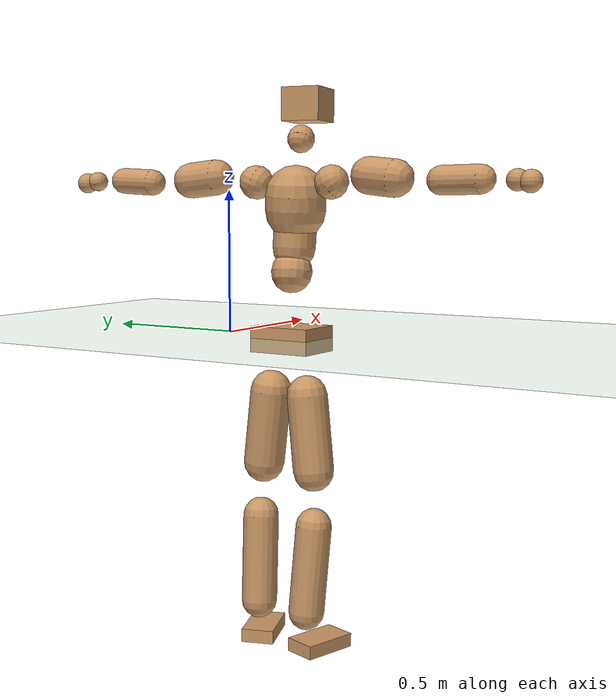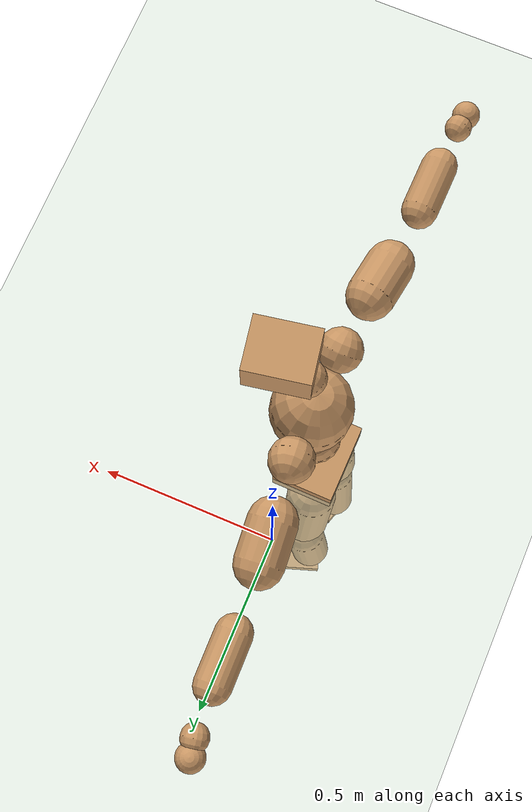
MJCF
<mujoco model="humanoid">
  <compiler coordinate="local" angle="radian"/>
  <default>
    <joint damping="0.0" armature="0.01" stiffness="0.0" limited="true"/>
    <geom conaffinity="1" condim="3" contype="7" margin="0.001" rgba="0.8 0.6 .4 1"/>
  </default>
  <asset>
    <texture type="skybox" builtin="gradient" rgb1=".4 .5 .6" rgb2="0 0 0" width="100" height="100"/>
    <texture builtin="flat" height="1278" mark="cross" markrgb="1 1 1" name="texgeom" random="0.01" rgb1="0.8 0.6 0.4" rgb2="0.8 0.6 0.4" type="cube" width="127"/>
    <texture builtin="checker" height="100" name="texplane" rgb1="0 0 0" rgb2="0.8 0.8 0.8" type="2d" width="100"/>
    <material name="MatPlane" reflectance="0.5" shininess="1" specular="1" texrepeat="60 60" texture="texplane"/>
    <material name="geom" texture="texgeom" texuniform="true"/>
  </asset>
  <worldbody>
    <light cutoff="100" diffuse="1 1 1" dir="-0 0 -1.3" directional="true" exponent="1" pos="0 0 1.3" specular=".1 .1 .1"/>
    <geom conaffinity="1" condim="3" name="floor" pos="0 0 0" rgba="0.8 0.9 0.8 1" size="100 100 .2" type="plane" material="MatPlane"/>
    <body name="Pelvis" pos="-0.0052 -0.2717 0.0043">
      <freejoint name="Pelvis"/>
      <geom type="box" contype="1" conaffinity="1" density="5359.374713" pos="-0.0157 0.0002 -0.0100" size="0.0877 0.1119 0.0444" quat="1.0000 0.0000 0.0000 -0.0062" name="Pelvis"/>
      <body name="L_Hip" pos="-0.0364 0.0599 -0.0935">
        <joint name="L_Hip_x" type="hinge" pos="0 0 0" axis="1 0 0" stiffness="1600" damping="160" armature="0.02" range="-180.0000 180.0000"/>
        <joint name="L_Hip_y" type="hinge" pos="0 0 0" axis="0 1 0" stiffness="1600" damping="160" armature="0.02" range="-180.0000 180.0000"/>
        <joint name="L_Hip_z" type="hinge" pos="0 0 0" axis="0 0 1" stiffness="1600" damping="160" armature="0.02" range="-180.0000 180.0000"/>
        <geom type="capsule" contype="1" conaffinity="1" density="2040.816327" size="0.0712" fromto="0.0009 0.0119 -0.1005 0.0031 0.0426 -0.3591" name="L_Hip"/>
        <body name="L_Knee" pos="0.004 0.0546 -0.4596">
          <joint name="L_Knee_x" type="hinge" pos="0 0 0" axis="1 0 0" stiffness="1600" damping="160" armature="0.02" range="-180.0000 180.0000"/>
          <joint name="L_Knee_y" type="hinge" pos="0 0 0" axis="0 1 0" stiffness="1600" damping="160" armature="0.02" range="-180.0000 180.0000"/>
          <joint name="L_Knee_z" type="hinge" pos="0 0 0" axis="0 0 1" stiffness="1600" damping="160" armature="0.02" range="-180.0000 180.0000"/>
          <geom type="capsule" contype="1" conaffinity="1" density="1234.567901" size="0.0626" fromto="-0.0080 -0.0028 -0.0922 -0.0347 -0.0121 -0.3982" name="L_Knee"/>
          <body name="L_Ankle" pos="-0.0427 -0.0149 -0.4904">
            <joint name="L_Ankle_x" type="hinge" pos="0 0 0" axis="1 0 0" stiffness="1600" damping="160" armature="0.02" range="-180.0000 180.0000"/>
            <joint name="L_Ankle_y" type="hinge" pos="0 0 0" axis="0 1 0" stiffness="1600" damping="160" armature="0.02" range="-180.0000 180.0000"/>
            <joint name="L_Ankle_z" type="hinge" pos="0 0 0" axis="0 0 1" stiffness="1600" damping="160" armature="0.02" range="-180.0000 180.0000"/>
            <geom type="box" contype="1" conaffinity="1" density="999.999999" pos="0.0662 0.0228 -0.0346" size="0.0961 0.0569 0.0237" quat="0.9863 0.0000 0.0000 0.1649" name="L_Ankle"/>
            <body name="L_Toe" pos="0.1325 0.0456 -0.0692">
              <joint name="L_Toe_x" type="hinge" pos="0 0 0" axis="1 0 0" stiffness="1000" damping="100" armature="0.02" range="-180.0000 180.0000"/>
              <joint name="L_Toe_y" type="hinge" pos="0 0 0" axis="0 1 0" stiffness="1000" damping="100" armature="0.02" range="-180.0000 180.0000"/>
              <joint name="L_Toe_z" type="hinge" pos="0 0 0" axis="0 0 1" stiffness="1000" damping="100" armature="0.02" range="-180.0000 180.0000"/>
              <geom type="box" contype="1" conaffinity="1" density="7654342.655283" pos="0.0000 0.0000 0.0371" size="0.0011 0.0028 0.0013" quat="0.9856 0.0000 0.0000 0.1691" name="L_Toe"/>
            </body>
          </body>
        </body>
      </body>
      <body name="R_Hip" pos="-0.0343 -0.0636 -0.1005">
        <joint name="R_Hip_x" type="hinge" pos="0 0 0" axis="1 0 0" stiffness="1600" damping="160" armature="0.02" range="-180.0000 180.0000"/>
        <joint name="R_Hip_y" type="hinge" pos="0 0 0" axis="0 1 0" stiffness="1600" damping="160" armature="0.02" range="-180.0000 180.0000"/>
        <joint name="R_Hip_z" type="hinge" pos="0 0 0" axis="0 0 1" stiffness="1600" damping="160" armature="0.02" range="-180.0000 180.0000"/>
        <geom type="capsule" contype="1" conaffinity="1" density="2040.816327" size="0.0699" fromto="-0.0024 -0.0116 -0.0992 -0.0088 -0.0421 -0.3594" name="R_Hip"/>
        <body name="R_Knee" pos="-0.0113 -0.0538 -0.4586">
          <joint name="R_Knee_x" type="hinge" pos="0 0 0" axis="1 0 0" stiffness="1600" damping="160" armature="0.02" range="-180.0000 180.0000"/>
          <joint name="R_Knee_y" type="hinge" pos="0 0 0" axis="0 1 0" stiffness="1600" damping="160" armature="0.02" range="-180.0000 180.0000"/>
          <joint name="R_Knee_z" type="hinge" pos="0 0 0" axis="0 0 1" stiffness="1600" damping="160" armature="0.02" range="-180.0000 180.0000"/>
          <geom type="capsule" contype="1" conaffinity="1" density="1234.567901" size="0.0617" fromto="-0.0072 0.0043 -0.0913 -0.0314 0.0188 -0.3962" name="R_Knee"/>
          <body name="R_Ankle" pos="-0.0387 0.0231 -0.4876">
            <joint name="R_Ankle_x" type="hinge" pos="0 0 0" axis="1 0 0" stiffness="1600" damping="160" armature="0.02" range="-180.0000 180.0000"/>
            <joint name="R_Ankle_y" type="hinge" pos="0 0 0" axis="0 1 0" stiffness="1600" damping="160" armature="0.02" range="-180.0000 180.0000"/>
            <joint name="R_Ankle_z" type="hinge" pos="0 0 0" axis="0 0 1" stiffness="1600" damping="160" armature="0.02" range="-180.0000 180.0000"/>
            <geom type="box" contype="1" conaffinity="1" density="999.999985" pos="0.0712 -0.0221 -0.0362" size="0.0971 0.0576 0.0236" quat="0.9887 0.0000 0.0000 -0.1497" name="R_Ankle"/>
            <body name="R_Toe" pos="0.1424 -0.0441 -0.0724">
              <joint name="R_Toe_x" type="hinge" pos="0 0 0" axis="1 0 0" stiffness="1000" damping="100" armature="0.02" range="-180.0000 180.0000"/>
              <joint name="R_Toe_y" type="hinge" pos="0 0 0" axis="0 1 0" stiffness="1000" damping="100" armature="0.02" range="-180.0000 180.0000"/>
              <joint name="R_Toe_z" type="hinge" pos="0 0 0" axis="0 0 1" stiffness="1000" damping="100" armature="0.02" range="-180.0000 180.0000"/>
              <geom type="box" contype="1" conaffinity="1" density="7813628.625255" pos="0.0000 0.0000 0.0389" size="0.0011 0.0026 0.0013" quat="0.9899 0.0000 0.0000 -0.1414" name="R_Toe"/>
            </body>
          </body>
        </body>
      </body>
      <body name="Torso" pos="-0.0234 0.0048 0.1338">
        <joint name="Torso_x" type="hinge" pos="0 0 0" axis="1 0 0" stiffness="2000" damping="200" armature="0.02" range="-180.0000 180.0000"/>
        <joint name="Torso_y" type="hinge" pos="0 0 0" axis="0 1 0" stiffness="2000" damping="200" armature="0.02" range="-180.0000 180.0000"/>
        <joint name="Torso_z" type="hinge" pos="0 0 0" axis="0 0 1" stiffness="2000" damping="200" armature="0.02" range="-180.0000 180.0000"/>
        <geom type="capsule" contype="1" conaffinity="1" density="2040.816327" size="0.0714" fromto="0.0195 0.0024 0.0840 0.0199 0.0025 0.0859" name="Torso"/>
        <body name="Spine" pos="0.0394 0.0049 0.1699">
          <joint name="Spine_x" type="hinge" pos="0 0 0" axis="1 0 0" stiffness="2000" damping="200" armature="0.02" range="-180.0000 180.0000"/>
          <joint name="Spine_y" type="hinge" pos="0 0 0" axis="0 1 0" stiffness="2000" damping="200" armature="0.02" range="-180.0000 180.0000"/>
          <joint name="Spine_z" type="hinge" pos="0 0 0" axis="0 0 1" stiffness="2000" damping="200" armature="0.02" range="-180.0000 180.0000"/>
          <geom type="capsule" contype="1" conaffinity="1" density="2040.816327" size="0.0736" fromto="0.0050 -0.0019 0.0734 -0.0003 0.0001 -0.0045" name="Spine"/>
          <body name="Chest" pos="0.0047 -0.0018 0.0689">
            <joint name="Chest_x" type="hinge" pos="0 0 0" axis="1 0 0" stiffness="2000" damping="200" armature="0.02" range="-180.0000 180.0000"/>
            <joint name="Chest_y" type="hinge" pos="0 0 0" axis="0 1 0" stiffness="2000" damping="200" armature="0.02" range="-180.0000 180.0000"/>
            <joint name="Chest_z" type="hinge" pos="0 0 0" axis="0 0 1" stiffness="2000" damping="200" armature="0.02" range="-180.0000 180.0000"/>
            <geom type="capsule" contype="1" conaffinity="1" density="2040.816327" size="0.1043" fromto="-0.0080 -0.0061 0.1038 -0.0043 -0.0033 0.0560" name="Chest"/>
            <body name="Neck" pos="-0.0156 -0.0182 0.2372">
              <joint name="Neck_x" type="hinge" pos="0 0 0" axis="1 0 0" stiffness="1000" damping="100" armature="0.02" range="-180.0000 180.0000"/>
              <joint name="Neck_y" type="hinge" pos="0 0 0" axis="0 1 0" stiffness="1000" damping="100" armature="0.02" range="-180.0000 180.0000"/>
              <joint name="Neck_z" type="hinge" pos="0 0 0" axis="0 0 1" stiffness="1000" damping="100" armature="0.02" range="-180.0000 180.0000"/>
              <geom type="capsule" contype="1" conaffinity="1" density="1000" size="0.0462" fromto="0.0296 0.0046 0.0571 0.0305 0.0047 0.0589" name="Neck"/>
              <body name="Head" pos="0.06 0.0093 0.116">
                <joint name="Head_x" type="hinge" pos="0 0 0" axis="1 0 0" stiffness="1000" damping="100" armature="0.02" range="-180.0000 180.0000"/>
                <joint name="Head_y" type="hinge" pos="0 0 0" axis="0 1 0" stiffness="1000" damping="100" armature="0.02" range="-180.0000 180.0000"/>
                <joint name="Head_z" type="hinge" pos="0 0 0" axis="0 0 1" stiffness="1000" damping="100" armature="0.02" range="-180.0000 180.0000"/>
                <geom type="box" contype="1" conaffinity="1" density="2250.000141" pos="0.0310 0.0056 0.0590" size="0.0807 0.0666 0.0564" quat="0.9960 0.0000 0.0000 0.0896" name="Head"/>
              </body>
            </body>
            <body name="L_Thorax" pos="-0.0057 0.0818 0.1227">
              <joint name="L_Thorax_x" type="hinge" pos="0 0 0" axis="1 0 0" stiffness="1000" damping="100" armature="0.02" range="-180.0000 180.0000"/>
              <joint name="L_Thorax_y" type="hinge" pos="0 0 0" axis="0 1 0" stiffness="1000" damping="100" armature="0.02" range="-180.0000 180.0000"/>
              <joint name="L_Thorax_z" type="hinge" pos="0 0 0" axis="0 0 1" stiffness="1000" damping="100" armature="0.02" range="-180.0000 180.0000"/>
              <geom type="capsule" contype="1" conaffinity="1" density="1000" size="0.0584" fromto="-0.0097 0.0652 0.0275 -0.0099 0.0670 0.0282" name="L_Thorax"/>
              <body name="L_Shoulder" pos="-0.0196 0.1322 0.0557">
                <joint name="L_Shoulder_x" type="hinge" pos="0 0 0" axis="1 0 0" stiffness="1000" damping="100" armature="0.02" range="-720.0000 720.0000"/>
                <joint name="L_Shoulder_y" type="hinge" pos="0 0 0" axis="0 1 0" stiffness="1000" damping="100" armature="0.02" range="-720.0000 720.0000"/>
                <joint name="L_Shoulder_z" type="hinge" pos="0 0 0" axis="0 0 1" stiffness="1000" damping="100" armature="0.02" range="-720.0000 720.0000"/>
                <geom type="capsule" contype="1" conaffinity="1" density="1000" size="0.062" fromto="-0.0078 0.0912 -0.0092 -0.0166 0.1951 -0.0197" name="L_Shoulder"/>
                <body name="L_Elbow" pos="-0.0243 0.2863 -0.0289">
                  <joint name="L_Elbow_x" type="hinge" pos="0 0 0" axis="1 0 0" stiffness="1000" damping="100" armature="0.02" range="-720.0000 720.0000"/>
                  <joint name="L_Elbow_y" type="hinge" pos="0 0 0" axis="0 1 0" stiffness="1000" damping="100" armature="0.02" range="-720.0000 720.0000"/>
                  <joint name="L_Elbow_z" type="hinge" pos="0 0 0" axis="0 0 1" stiffness="1000" damping="100" armature="0.02" range="-720.0000 720.0000"/>
                  <geom type="capsule" contype="1" conaffinity="1" density="1000" size="0.0462" fromto="-0.0014 0.0761 0.0041 -0.0037 0.2057 0.0111" name="L_Elbow"/>
                  <body name="L_Wrist" pos="-0.005 0.2818 0.0152">
                    <joint name="L_Wrist_x" type="hinge" pos="0 0 0" axis="1 0 0" stiffness="600" damping="60" armature="0.02" range="-180.0000 180.0000"/>
                    <joint name="L_Wrist_y" type="hinge" pos="0 0 0" axis="0 1 0" stiffness="600" damping="60" armature="0.02" range="-180.0000 180.0000"/>
                    <joint name="L_Wrist_z" type="hinge" pos="0 0 0" axis="0 0 1" stiffness="600" damping="60" armature="0.02" range="-180.0000 180.0000"/>
                    <geom type="capsule" contype="1" conaffinity="1" density="1000" size="0.0349" fromto="-0.0078 0.0430 -0.0057 -0.0082 0.0450 -0.0059" name="L_Wrist"/>
                    <body name="L_Hand" pos="-0.016 0.088 -0.0116">
                      <joint name="L_Hand_x" type="hinge" pos="0 0 0" axis="1 0 0" stiffness="600" damping="60" armature="0.02" range="-180.0000 180.0000"/>
                      <joint name="L_Hand_y" type="hinge" pos="0 0 0" axis="0 1 0" stiffness="600" damping="60" armature="0.02" range="-180.0000 180.0000"/>
                      <joint name="L_Hand_z" type="hinge" pos="0 0 0" axis="0 0 1" stiffness="600" damping="60" armature="0.02" range="-180.0000 180.0000"/>
                      <geom type="sphere" contype="1" conaffinity="1" density="1000" size="0.0364" pos="0.0000 0.0000 0.0000" name="L_Hand"/>
                    </body>
                  </body>
                </body>
              </body>
            </body>
            <body name="R_Thorax" pos="-0.0156 -0.092 0.1195">
              <joint name="R_Thorax_x" type="hinge" pos="0 0 0" axis="1 0 0" stiffness="1000" damping="100" armature="0.02" range="-180.0000 180.0000"/>
              <joint name="R_Thorax_y" type="hinge" pos="0 0 0" axis="0 1 0" stiffness="1000" damping="100" armature="0.02" range="-180.0000 180.0000"/>
              <joint name="R_Thorax_z" type="hinge" pos="0 0 0" axis="0 0 1" stiffness="1000" damping="100" armature="0.02" range="-180.0000 180.0000"/>
              <geom type="capsule" contype="1" conaffinity="1" density="1000" size="0.0573" fromto="-0.0037 -0.0594 0.0287 -0.0038 -0.0612 0.0296" name="R_Thorax"/>
              <body name="R_Shoulder" pos="-0.0074 -0.1207 0.0583">
                <joint name="R_Shoulder_x" type="hinge" pos="0 0 0" axis="1 0 0" stiffness="1000" damping="100" armature="0.02" range="-720.0000 720.0000"/>
                <joint name="R_Shoulder_y" type="hinge" pos="0 0 0" axis="0 1 0" stiffness="1000" damping="100" armature="0.02" range="-720.0000 720.0000"/>
                <joint name="R_Shoulder_z" type="hinge" pos="0 0 0" axis="0 0 1" stiffness="1000" damping="100" armature="0.02" range="-720.0000 720.0000"/>
                <geom type="capsule" contype="1" conaffinity="1" density="1000" size="0.0619" fromto="-0.0125 -0.0906 -0.0094 -0.0262 -0.1893 -0.0196" name="R_Shoulder"/>
                <body name="R_Elbow" pos="-0.0387 -0.2799 -0.029">
                  <joint name="R_Elbow_x" type="hinge" pos="0 0 0" axis="1 0 0" stiffness="1000" damping="100" armature="0.02" range="-720.0000 720.0000"/>
                  <joint name="R_Elbow_y" type="hinge" pos="0 0 0" axis="0 1 0" stiffness="1000" damping="100" armature="0.02" range="-720.0000 720.0000"/>
                  <joint name="R_Elbow_z" type="hinge" pos="0 0 0" axis="0 0 1" stiffness="1000" damping="100" armature="0.02" range="-720.0000 720.0000"/>
                  <geom type="capsule" contype="1" conaffinity="1" density="1000" size="0.0461" fromto="-0.0014 -0.0760 0.0010 -0.0038 -0.2077 0.0028" name="R_Elbow"/>
                  <body name="R_Wrist" pos="-0.0052 -0.2838 0.0038">
                    <joint name="R_Wrist_x" type="hinge" pos="0 0 0" axis="1 0 0" stiffness="600" damping="60" armature="0.02" range="-180.0000 180.0000"/>
                    <joint name="R_Wrist_y" type="hinge" pos="0 0 0" axis="0 1 0" stiffness="600" damping="60" armature="0.02" range="-180.0000 180.0000"/>
                    <joint name="R_Wrist_z" type="hinge" pos="0 0 0" axis="0 0 1" stiffness="600" damping="60" armature="0.02" range="-180.0000 180.0000"/>
                    <geom type="capsule" contype="1" conaffinity="1" density="1000" size="0.034" fromto="-0.0049 -0.0424 -0.0041 -0.0052 -0.0444 -0.0043" name="R_Wrist"/>
                    <body name="R_Hand" pos="-0.0101 -0.0868 -0.0085">
                      <joint name="R_Hand_x" type="hinge" pos="0 0 0" axis="1 0 0" stiffness="600" damping="60" armature="0.02" range="-180.0000 180.0000"/>
                      <joint name="R_Hand_y" type="hinge" pos="0 0 0" axis="0 1 0" stiffness="600" damping="60" armature="0.02" range="-180.0000 180.0000"/>
                      <joint name="R_Hand_z" type="hinge" pos="0 0 0" axis="0 0 1" stiffness="600" damping="60" armature="0.02" range="-180.0000 180.0000"/>
                      <geom type="sphere" contype="1" conaffinity="1" density="1000" size="0.0353" pos="0.0000 0.0000 0.0000" name="R_Hand"/>
                    </body>
                  </body>
                </body>
              </body>
            </body>
          </body>
        </body>
      </body>
    </body>
  </worldbody>
  <actuator>
    <motor name="L_Hip_x" joint="L_Hip_x" gear="500"/>
    <motor name="L_Hip_y" joint="L_Hip_y" gear="500"/>
    <motor name="L_Hip_z" joint="L_Hip_z" gear="500"/>
    <motor name="L_Knee_x" joint="L_Knee_x" gear="500"/>
    <motor name="L_Knee_y" joint="L_Knee_y" gear="500"/>
    <motor name="L_Knee_z" joint="L_Knee_z" gear="500"/>
    <motor name="L_Ankle_x" joint="L_Ankle_x" gear="500"/>
    <motor name="L_Ankle_y" joint="L_Ankle_y" gear="500"/>
    <motor name="L_Ankle_z" joint="L_Ankle_z" gear="500"/>
    <motor name="L_Toe_x" joint="L_Toe_x" gear="500"/>
    <motor name="L_Toe_y" joint="L_Toe_y" gear="500"/>
    <motor name="L_Toe_z" joint="L_Toe_z" gear="500"/>
    <motor name="R_Hip_x" joint="R_Hip_x" gear="500"/>
    <motor name="R_Hip_y" joint="R_Hip_y" gear="500"/>
    <motor name="R_Hip_z" joint="R_Hip_z" gear="500"/>
    <motor name="R_Knee_x" joint="R_Knee_x" gear="500"/>
    <motor name="R_Knee_y" joint="R_Knee_y" gear="500"/>
    <motor name="R_Knee_z" joint="R_Knee_z" gear="500"/>
    <motor name="R_Ankle_x" joint="R_Ankle_x" gear="500"/>
    <motor name="R_Ankle_y" joint="R_Ankle_y" gear="500"/>
    <motor name="R_Ankle_z" joint="R_Ankle_z" gear="500"/>
    <motor name="R_Toe_x" joint="R_Toe_x" gear="500"/>
    <motor name="R_Toe_y" joint="R_Toe_y" gear="500"/>
    <motor name="R_Toe_z" joint="R_Toe_z" gear="500"/>
    <motor name="Torso_x" joint="Torso_x" gear="500"/>
    <motor name="Torso_y" joint="Torso_y" gear="500"/>
    <motor name="Torso_z" joint="Torso_z" gear="500"/>
    <motor name="Spine_x" joint="Spine_x" gear="500"/>
    <motor name="Spine_y" joint="Spine_y" gear="500"/>
    <motor name="Spine_z" joint="Spine_z" gear="500"/>
    <motor name="Chest_x" joint="Chest_x" gear="500"/>
    <motor name="Chest_y" joint="Chest_y" gear="500"/>
    <motor name="Chest_z" joint="Chest_z" gear="500"/>
    <motor name="Neck_x" joint="Neck_x" gear="500"/>
    <motor name="Neck_y" joint="Neck_y" gear="500"/>
    <motor name="Neck_z" joint="Neck_z" gear="500"/>
    <motor name="Head_x" joint="Head_x" gear="500"/>
    <motor name="Head_y" joint="Head_y" gear="500"/>
    <motor name="Head_z" joint="Head_z" gear="500"/>
    <motor name="L_Thorax_x" joint="L_Thorax_x" gear="500"/>
    <motor name="L_Thorax_y" joint="L_Thorax_y" gear="500"/>
    <motor name="L_Thorax_z" joint="L_Thorax_z" gear="500"/>
    <motor name="L_Shoulder_x" joint="L_Shoulder_x" gear="500"/>
    <motor name="L_Shoulder_y" joint="L_Shoulder_y" gear="500"/>
    <motor name="L_Shoulder_z" joint="L_Shoulder_z" gear="500"/>
    <motor name="L_Elbow_x" joint="L_Elbow_x" gear="500"/>
    <motor name="L_Elbow_y" joint="L_Elbow_y" gear="500"/>
    <motor name="L_Elbow_z" joint="L_Elbow_z" gear="500"/>
    <motor name="L_Wrist_x" joint="L_Wrist_x" gear="500"/>
    <motor name="L_Wrist_y" joint="L_Wrist_y" gear="500"/>
    <motor name="L_Wrist_z" joint="L_Wrist_z" gear="500"/>
    <motor name="L_Hand_x" joint="L_Hand_x" gear="500"/>
    <motor name="L_Hand_y" joint="L_Hand_y" gear="500"/>
    <motor name="L_Hand_z" joint="L_Hand_z" gear="500"/>
    <motor name="R_Thorax_x" joint="R_Thorax_x" gear="500"/>
    <motor name="R_Thorax_y" joint="R_Thorax_y" gear="500"/>
    <motor name="R_Thorax_z" joint="R_Thorax_z" gear="500"/>
    <motor name="R_Shoulder_x" joint="R_Shoulder_x" gear="500"/>
    <motor name="R_Shoulder_y" joint="R_Shoulder_y" gear="500"/>
    <motor name="R_Shoulder_z" joint="R_Shoulder_z" gear="500"/>
    <motor name="R_Elbow_x" joint="R_Elbow_x" gear="500"/>
    <motor name="R_Elbow_y" joint="R_Elbow_y" gear="500"/>
    <motor name="R_Elbow_z" joint="R_Elbow_z" gear="500"/>
    <motor name="R_Wrist_x" joint="R_Wrist_x" gear="500"/>
    <motor name="R_Wrist_y" joint="R_Wrist_y" gear="500"/>
    <motor name="R_Wrist_z" joint="R_Wrist_z" gear="500"/>
    <motor name="R_Hand_x" joint="R_Hand_x" gear="500"/>
    <motor name="R_Hand_y" joint="R_Hand_y" gear="500"/>
    <motor name="R_Hand_z" joint="R_Hand_z" gear="500"/>
  </actuator>
  <contact>
    <exclude body1="Torso" body2="Chest"/>
    <exclude body1="Head" body2="Chest"/>
    <exclude body1="R_Knee" body2="R_Toe"/>
    <exclude body1="R_Knee" body2="L_Ankle"/>
    <exclude body1="R_Knee" body2="L_Toe"/>
    <exclude body1="L_Knee" body2="L_Toe"/>
    <exclude body1="L_Knee" body2="R_Ankle"/>
    <exclude body1="L_Knee" body2="R_Toe"/>
    <exclude body1="L_Shoulder" body2="Chest"/>
    <exclude body1="R_Shoulder" body2="Chest"/>
  </contact>
  <sensor/>
  <size njmax="700" nconmax="700"/>
</mujoco>
